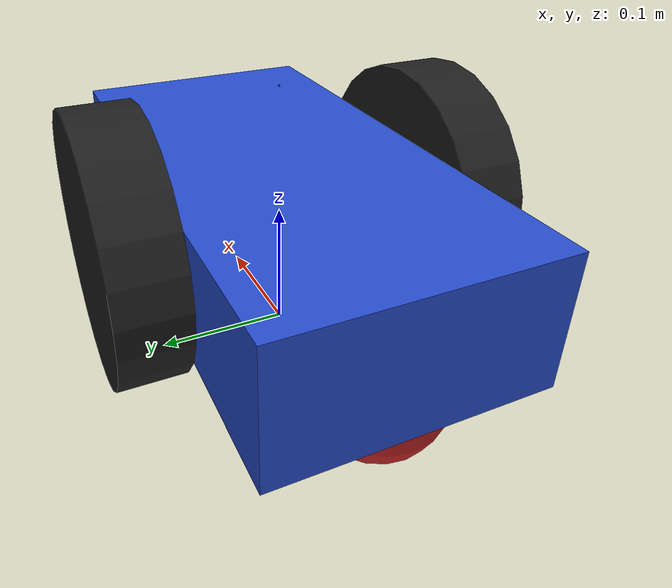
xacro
<?xml version="1.0"?>
<robot name="mybot" xmlns:xacro="http://www.ros.org/wiki/xacro">
        <!-- Put here the robot description -->
<xacro:property name="PI" value="3.1415926535897931"/>

<xacro:property name="chassisHeight" value="0.1"/>
<xacro:property name="chassisLength" value="0.4"/>
<xacro:property name="chassisWidth" value="0.2"/>
<xacro:property name="chassisMass" value="50"/>

<xacro:property name="casterRadius" value="0.05"/>
<xacro:property name="casterMass" value="5"/>

<xacro:property name="wheelWidth" value="0.05"/>
<xacro:property name="wheelRadius" value="0.1"/>
<xacro:property name="wheelPos" value="0.2"/>
<xacro:property name="wheelMass" value="5"/>

<xacro:property name="cameraSize" value="0.05"/>
<xacro:property name="cameraMass" value="0.1"/>

<xacro:property name="imuSize" value="0.001"/>
<xacro:property name="imuMass" value="0.01"/>

<xacro:include filename="$(find mybot_description)/urdf/mybot.gazebo" />
<xacro:include filename="$(find mybot_description)/urdf/materials.xacro" />
<xacro:include filename="$(find mybot_description)/urdf/macros.xacro" />

<link name="footprint" />

<joint name="base_joint" type="fixed">
  <parent link="footprint"/>
  <child link="chassis"/>
</joint>
<link name='chassis'>
  <collision>
    <origin xyz="0 0 ${wheelRadius}" rpy="0 0 0"/>
    <geometry>
      <box size="${chassisLength} ${chassisWidth} ${chassisHeight}"/>
    </geometry>
  </collision>
  <visual>
    <origin xyz="0 0 ${wheelRadius}" rpy="0 0 0"/>
    <geometry>
      <box size="${chassisLength} ${chassisWidth} ${chassisHeight}"/>
    </geometry>
    <material name="blue"/>
  </visual>
  <inertial>
    <origin xyz="0 0 ${wheelRadius}" rpy="0 0 0"/>
    <mass value="${chassisMass}"/>
    <box_inertia m="${chassisMass}" x="${chassisLength}" y="${chassisWidth}" z="${chassisHeight}"/>
  </inertial>
</link>
<joint name="fixed" type="fixed">
  <parent link="chassis"/>
  <child link="caster_wheel"/>
</joint>

<link name="caster_wheel">
  <collision>
    <origin xyz="${casterRadius-chassisLength/2} 0 ${casterRadius-chassisHeight+wheelRadius}" rpy="0 0 0"/>
    <geometry>
      <sphere radius="${casterRadius}"/>
    </geometry>
  </collision>

  <visual>
    <origin xyz="${casterRadius-chassisLength/2} 0 ${casterRadius-chassisHeight+wheelRadius}" rpy="0 0 0"/>
    <geometry>
      <sphere radius="${casterRadius}"/>
    </geometry>
    <material name="red"/>
  </visual>

  <inertial>
    <origin xyz="${casterRadius-chassisLength/2} 0 ${casterRadius-chassisHeight+wheelRadius}" rpy="0 0 0"/>
    <mass value="${casterMass}"/>
    <sphere_inertia m="${casterMass}" r="${casterRadius}"/>
  </inertial>
</link>
<wheel lr="left" tY="1"/>
<wheel lr="right" tY="-1"/>
<joint name="imu_joint" type="continuous">
  <parent link="chassis"/>
  <child link="imu"/>
<origin xyz="0 0 ${chassisHeight+wheelRadius}" rpy="0 0 0" />
  <axis xyz="0 0 0" rpy="0 0 0" />
  <limit effort="0" velocity="0"/>
  <joint_properties damping="0.0" friction="0.0"/>
</joint>
<link name="imu">
  <collision>
    <origin xyz="0 0 0" rpy="0 0 0"/>
    <geometry>
      <box size="${imuSize} ${imuSize} ${imuSize}"/>
    </geometry>
  </collision>

  <visual>
    <origin xyz="0 0 0" rpy="0 0 0"/>
    <geometry>
      <box size="${imuSize} ${imuSize} ${imuSize}"/>
    </geometry>
    <material name="blue"/>
  </visual>

  <inertial>
    <mass value="${imuMass}" />
    <origin xyz="0 0 0" rpy="0 0 0"/>
    <box_inertia m="${imuMass}" x="${imuSize}" y="${imuSize}" z="${imuSize}" />
  </inertial>
</link>

</robot>

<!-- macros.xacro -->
<robot name="mybot" xmlns:xacro="http://www.ros.org/wiki/xacro">
  <macro name="cylinder_inertia" params="m r h">
  <inertia  ixx="${m*(3*r*r+h*h)/12}" ixy = "0" ixz = "0"
    iyy="${m*(3*r*r+h*h)/12}" iyz = "0"
    izz="${m*r*r/2}"
  />
</macro>

<macro name="box_inertia" params="m x y z">
  <inertia  ixx="${m*(y*y+z*z)/12}" ixy = "0" ixz = "0"
    iyy="${m*(x*x+z*z)/12}" iyz = "0"
    izz="${m*(x*x+z*z)/12}"
  />
</macro>

<macro name="sphere_inertia" params="m r">
  <inertia  ixx="${2*m*r*r/5}" ixy = "0" ixz = "0"
    iyy="${2*m*r*r/5}" iyz = "0"
    izz="${2*m*r*r/5}"
  />
</macro>
<macro name="wheel" params="lr tY">

<link name="${lr}_wheel">
  <collision>
    <origin xyz="0 0 0" rpy="0 ${PI/2} ${PI/2}" />
    <geometry>
      <cylinder length="${wheelWidth}" radius="${wheelRadius}"/>
    </geometry>
  </collision>

  <visual>
    <origin xyz="0 0 0" rpy="0 ${PI/2} ${PI/2}" />
    <geometry>
      <cylinder length="${wheelWidth}" radius="${wheelRadius}"/>
    </geometry>
    <material name="black"/>
  </visual>

  <inertial>
    <origin xyz="0 0 0" rpy="0 ${PI/2} ${PI/2}" />
    <mass value="${wheelMass}"/>
    <cylinder_inertia m="${wheelMass}" r="${wheelRadius}" h="${wheelWidth}"/>
  </inertial>
</link>

<gazebo reference="${lr}_wheel">
  <mu1 value="1.0"/>
  <mu2 value="1.0"/>
  <kp  value="10000000.0" />
  <kd  value="1.0" />
  <fdir1 value="1 0 0"/>
  <material>Gazebo/Black</material>
</gazebo>

<joint name="${lr}_wheel_hinge" type="continuous">
  <parent link="chassis"/>
  <child link="${lr}_wheel"/>
<origin xyz="${-wheelPos+chassisLength/2} ${tY*wheelWidth/2+tY*chassisWidth/2} ${wheelRadius}" rpy="0 0 0" />
  <axis xyz="0 1 0" rpy="0 0 0" />
  <limit effort="100" velocity="100"/>
  <joint_properties damping="0.0" friction="0.0"/>
</joint>

<transmission name="${lr}_trans">
  <type>transmission_interface/SimpleTransmission</type>
  <joint name="${lr}_wheel_hinge">
    <hardwareInterface>hardware_interface/EffortJointInterface</hardwareInterface>
  </joint>
  <actuator name="${lr}Motor">
    <hardwareInterface>EffortJointInterface</hardwareInterface>
    <mechanicalReduction>10</mechanicalReduction>
  </actuator>
</transmission>

</macro>

    <!-- Imu definition required for DLS hardware interface of ros control -->

  <!-- Macro to add an IMU. -->
  <!-- IMU link -->
    <!-- [kg] -->
    <!-- IMU joint -->
      <!-- A good description of the IMU parameters can be found in the kalibr documentation:
           https://github.com/ethz-asl/kalibr/wiki/IMU-Noise-Model-and-Intrinsics -->
        <!-- (string, required): ros namespace in which the messages are published -->
        <!-- (string, required): name of the body which holds the IMU sensor -->
        <!-- (string): name of the sensor output topic and prefix of service names (defaults to imu) -->
        <!-- Gyroscope noise density (two-sided spectrum) [rad/s/sqrt(Hz)] -->
        <!-- Gyroscope bias random walk [rad/s/s/sqrt(Hz)] -->
        <!-- Gyroscope bias correlation time constant [s] -->
        <!-- Gyroscope turn on bias standard deviation [rad/s] -->
        <!-- Accelerometer noise density (two-sided spectrum) [m/s^2/sqrt(Hz)] -->
        <!-- Accelerometer bias random walk. [m/s^2/s/sqrt(Hz)] -->
        <!-- Accelerometer bias correlation time constant [s] -->
        <!-- Accelerometer turn on bias standard deviation [m/s^2] -->

</robot>
